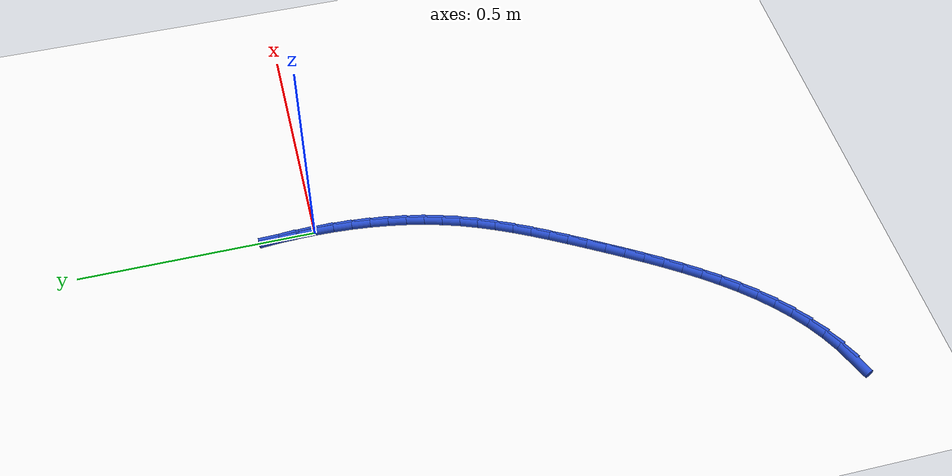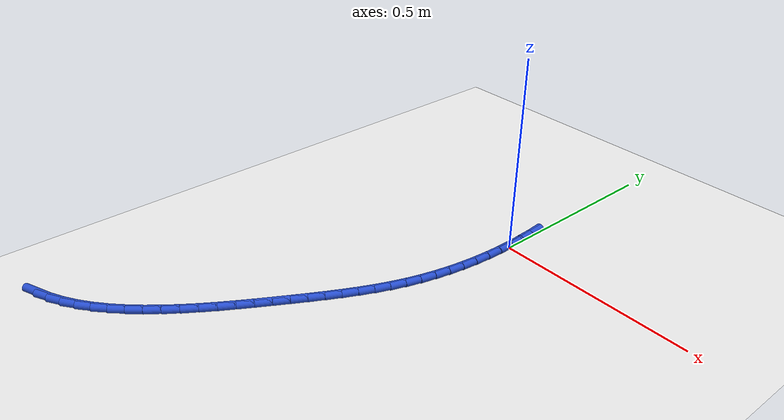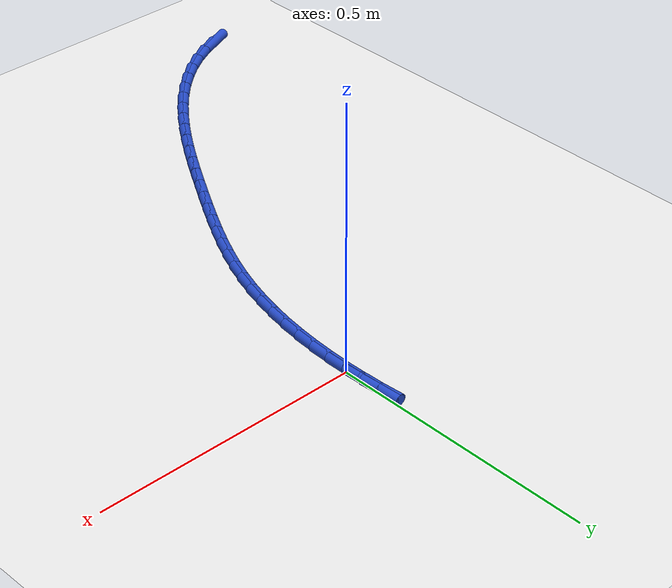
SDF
<sdf version="1.6">
 <world name="default">
  <model name="ground_plane">
   <static>1</static>
   <link name="link">
    <collision name="collision">
     <geometry><plane><normal>0 0 1</normal><size>100 100</size></plane></geometry>
     <surface><friction><ode><mu>100</mu><mu2>50</mu2></ode></friction></surface>
    </collision>
    <visual name="visual">
     <cast_shadows>0</cast_shadows>
     <geometry><plane><normal>0 0 1</normal><size>100 100</size></plane></geometry>
     <material>
      <script><uri>file://media/materials/scripts/gazebo.material</uri><name>Gazebo/WhiteGlow</name></script>
     </material>
    </visual>
   </link>
  </model>
  <model name="line">
   <link name="link_0">
    <pose>0.0 8.326672684688674e-17 0.01 0 1.57 -1.5583323516176184</pose>
    <collision name="collision">
     <geometry><cylinder><radius>0.01</radius><length>0.08</length></cylinder></geometry>
    </collision>
    <visual name="visual">
     <material>
      <script><name>Gazebo/Blue</name><uri>file://media/materials/scripts/gazebo.material</uri></script>
     </material>
     <geometry><cylinder><radius>0.01</radius><length>0.08</length></cylinder></geometry>
    </visual>
   </link>
   <link name="link_1">
    <pose>-0.00049817348563206 0.039966999378888604 0.01 0 1.57 -1.5231837299847661</pose>
    <collision name="collision">
     <geometry><cylinder><radius>0.01</radius><length>0.08</length></cylinder></geometry>
    </collision>
    <visual name="visual">
     <material>
      <script><name>Gazebo/Blue</name><uri>file://media/materials/scripts/gazebo.material</uri></script>
     </material>
     <geometry><cylinder><radius>0.01</radius><length>0.08</length></cylinder></geometry>
    </visual>
   </link>
   <link name="link_2">
    <pose>-0.0024028264487304237 0.0799398976470006 0.01 0 1.57 -1.4854096803634396</pose>
    <collision name="collision">
     <geometry><cylinder><radius>0.01</radius><length>0.08</length></cylinder></geometry>
    </collision>
    <visual name="visual">
     <material>
      <script><name>Gazebo/Blue</name><uri>file://media/materials/scripts/gazebo.material</uri></script>
     </material>
     <geometry><cylinder><radius>0.01</radius><length>0.08</length></cylinder></geometry>
    </visual>
   </link>
   <link name="link_180">
    <pose>-0.5565238218049252 -0.9795769766192313 0.01 0 1.57 0.3865329111864693</pose>
    <collision name="collision">
     <geometry><cylinder><radius>0.01</radius><length>0.08</length></cylinder></geometry>
    </collision>
    <visual name="visual">
     <material>
      <script><name>Gazebo/Blue</name><uri>file://media/materials/scripts/gazebo.material</uri></script>
     </material>
     <geometry><cylinder><radius>0.01</radius><length>0.08</length></cylinder></geometry>
    </visual>
   </link>
   <link name="link_181">
    <pose>-0.5215744329362249 -0.9653523042346761 0.01 0 1.57 0.4830212377849191</pose>
    <collision name="collision">
     <geometry><cylinder><radius>0.01</radius><length>0.08</length></cylinder></geometry>
    </collision>
    <visual name="visual">
     <material>
      <script><name>Gazebo/Blue</name><uri>file://media/materials/scripts/gazebo.material</uri></script>
     </material>
     <geometry><cylinder><radius>0.01</radius><length>0.08</length></cylinder></geometry>
    </visual>
   </link>
   <link name="link_182">
    <pose>-0.48830966295287115 -0.9479063625501031 0.01 0 1.57 0.5721788431687869</pose>
    <collision name="collision">
     <geometry><cylinder><radius>0.01</radius><length>0.08</length></cylinder></geometry>
    </collision>
    <visual name="visual">
     <material>
      <script><name>Gazebo/Blue</name><uri>file://media/materials/scripts/gazebo.material</uri></script>
     </material>
     <geometry><cylinder><radius>0.01</radius><length>0.08</length></cylinder></geometry>
    </visual>
   </link>
   <link name="link_183">
    <pose>-0.4566341458540283 -0.9275058453429049 0.01 0 1.57 0.6530207370626204</pose>
    <collision name="collision">
     <geometry><cylinder><radius>0.01</radius><length>0.08</length></cylinder></geometry>
    </collision>
    <visual name="visual">
     <material>
      <script><name>Gazebo/Blue</name><uri>file://media/materials/scripts/gazebo.material</uri></script>
     </material>
     <geometry><cylinder><radius>0.01</radius><length>0.08</length></cylinder></geometry>
    </visual>
   </link>
   <link name="link_184">
    <pose>-0.4264525156388624 -0.9044174463904768 0.01 0 1.57 0.7251770940195671</pose>
    <collision name="collision">
     <geometry><cylinder><radius>0.01</radius><length>0.08</length></cylinder></geometry>
    </collision>
    <visual name="visual">
     <material>
      <script><name>Gazebo/Blue</name><uri>file://media/materials/scripts/gazebo.material</uri></script>
     </material>
     <geometry><cylinder><radius>0.01</radius><length>0.08</length></cylinder></geometry>
    </visual>
   </link>
   <link name="link_185">
    <pose>-0.39766940630653763 -0.8789078594702125 0.01 0 1.57 0.7887371641478029</pose>
    <collision name="collision">
     <geometry><cylinder><radius>0.01</radius><length>0.08</length></cylinder></geometry>
    </collision>
    <visual name="visual">
     <material>
      <script><name>Gazebo/Blue</name><uri>file://media/materials/scripts/gazebo.material</uri></script>
     </material>
     <geometry><cylinder><radius>0.01</radius><length>0.08</length></cylinder></geometry>
    </visual>
   </link>
   <link name="link_186">
    <pose>-0.3701894518562189 -0.8512437783595059 0.01 0 1.57 0.8440816594356215</pose>
    <collision name="collision">
     <geometry><cylinder><radius>0.01</radius><length>0.08</length></cylinder></geometry>
    </collision>
    <visual name="visual">
     <material>
      <script><name>Gazebo/Blue</name><uri>file://media/materials/scripts/gazebo.material</uri></script>
     </material>
     <geometry><cylinder><radius>0.01</radius><length>0.08</length></cylinder></geometry>
    </visual>
   </link>
   <link name="link_187">
    <pose>-0.3439172862870711 -0.8216918968357515 0.01 0 1.57 0.891740620202016</pose>
    <collision name="collision">
     <geometry><cylinder><radius>0.01</radius><length>0.08</length></cylinder></geometry>
    </collision>
    <visual name="visual">
     <material>
      <script><name>Gazebo/Blue</name><uri>file://media/materials/scripts/gazebo.material</uri></script>
     </material>
     <geometry><cylinder><radius>0.01</radius><length>0.08</length></cylinder></geometry>
    </visual>
   </link>
   <link name="link_188">
    <pose>-0.3187575435982588 -0.7905189086763429 0.01 0 1.57 0.9322891109892542</pose>
    <collision name="collision">
     <geometry><cylinder><radius>0.01</radius><length>0.08</length></cylinder></geometry>
    </collision>
    <visual name="visual">
     <material>
      <script><name>Gazebo/Blue</name><uri>file://media/materials/scripts/gazebo.material</uri></script>
     </material>
     <geometry><cylinder><radius>0.01</radius><length>0.08</length></cylinder></geometry>
    </visual>
   </link>
   <link name="link_189">
    <pose>-0.2946148577889467 -0.7579915076586735 0.01 0 1.57 0.9662782288626665</pose>
    <collision name="collision">
     <geometry><cylinder><radius>0.01</radius><length>0.08</length></cylinder></geometry>
    </collision>
    <visual name="visual">
     <material>
      <script><name>Gazebo/Blue</name><uri>file://media/materials/scripts/gazebo.material</uri></script>
     </material>
     <geometry><cylinder><radius>0.01</radius><length>0.08</length></cylinder></geometry>
    </visual>
   </link>
   <link name="link_190">
    <pose>-0.2713938628583004 -0.7243763875601389 0.01 0 1.57 0.9941929998599791</pose>
    <collision name="collision">
     <geometry><cylinder><radius>0.01</radius><length>0.08</length></cylinder></geometry>
    </collision>
    <visual name="visual">
     <material>
      <script><name>Gazebo/Blue</name><uri>file://media/materials/scripts/gazebo.material</uri></script>
     </material>
     <geometry><cylinder><radius>0.01</radius><length>0.08</length></cylinder></geometry>
    </visual>
   </link>
   <link name="link_191">
    <pose>-0.24899919280548435 -0.6899402421581325 0.01 0 1.57 1.0164280937667067</pose>
    <collision name="collision">
     <geometry><cylinder><radius>0.01</radius><length>0.08</length></cylinder></geometry>
    </collision>
    <visual name="visual">
     <material>
      <script><name>Gazebo/Blue</name><uri>file://media/materials/scripts/gazebo.material</uri></script>
     </material>
     <geometry><cylinder><radius>0.01</radius><length>0.08</length></cylinder></geometry>
    </visual>
   </link>
   <link name="link_192">
    <pose>-0.22733548162966338 -0.654949765230048 0.01 0 1.57 1.0332737919654174</pose>
    <collision name="collision">
     <geometry><cylinder><radius>0.01</radius><length>0.08</length></cylinder></geometry>
    </collision>
    <visual name="visual">
     <material>
      <script><name>Gazebo/Blue</name><uri>file://media/materials/scripts/gazebo.material</uri></script>
     </material>
     <geometry><cylinder><radius>0.01</radius><length>0.08</length></cylinder></geometry>
    </visual>
   </link>
   <link name="link_193">
    <pose>-0.20630736333000227 -0.6196716505532798 0.01 0 1.57 1.0449065394936343</pose>
    <collision name="collision">
     <geometry><cylinder><radius>0.01</radius><length>0.08</length></cylinder></geometry>
    </collision>
    <visual name="visual">
     <material>
      <script><name>Gazebo/Blue</name><uri>file://media/materials/scripts/gazebo.material</uri></script>
     </material>
     <geometry><cylinder><radius>0.01</radius><length>0.08</length></cylinder></geometry>
    </visual>
   </link>
   <link name="link_194">
    <pose>-0.18581947190566597 -0.584372591905222 0.01 0 1.57 1.0514959011865521</pose>
    <collision name="collision">
     <geometry><cylinder><radius>0.01</radius><length>0.08</length></cylinder></geometry>
    </collision>
    <visual name="visual">
     <material>
      <script><name>Gazebo/Blue</name><uri>file://media/materials/scripts/gazebo.material</uri></script>
     </material>
     <geometry><cylinder><radius>0.01</radius><length>0.08</length></cylinder></geometry>
    </visual>
   </link>
   <link name="link_195">
    <pose>-0.16577932188499045 -0.5493148889452809 0.01 0 1.57 1.0575085285339294</pose>
    <collision name="collision">
     <geometry><cylinder><radius>0.01</radius><length>0.08</length></cylinder></geometry>
    </collision>
    <visual name="visual">
     <material>
      <script><name>Gazebo/Blue</name><uri>file://media/materials/scripts/gazebo.material</uri></script>
     </material>
     <geometry><cylinder><radius>0.01</radius><length>0.08</length></cylinder></geometry>
    </visual>
   </link>
   <link name="link_196">
    <pose>-0.14620591860633594 -0.5145907671053007 0.01 0 1.57 1.0688932135027</pose>
    <collision name="collision">
     <geometry><cylinder><radius>0.01</radius><length>0.08</length></cylinder></geometry>
    </collision>
    <visual name="visual">
     <material>
      <script><name>Gazebo/Blue</name><uri>file://media/materials/scripts/gazebo.material</uri></script>
     </material>
     <geometry><cylinder><radius>0.01</radius><length>0.08</length></cylinder></geometry>
    </visual>
   </link>
   <link name="link_197">
    <pose>-0.12726281521425406 -0.48007195062534247 0.01 0 1.57 1.0862132047849662</pose>
    <collision name="collision">
     <geometry><cylinder><radius>0.01</radius><length>0.08</length></cylinder></geometry>
    </collision>
    <visual name="visual">
     <material>
      <script><name>Gazebo/Blue</name><uri>file://media/materials/scripts/gazebo.material</uri></script>
     </material>
     <geometry><cylinder><radius>0.01</radius><length>0.08</length></cylinder></geometry>
    </visual>
   </link>
   <link name="link_198">
    <pose>-0.10912319684178573 -0.4456154705792558 0.01 0 1.57 1.1095979594414858</pose>
    <collision name="collision">
     <geometry><cylinder><radius>0.01</radius><length>0.08</length></cylinder></geometry>
    </collision>
    <visual name="visual">
     <material>
      <script><name>Gazebo/Blue</name><uri>file://media/materials/scripts/gazebo.material</uri></script>
     </material>
     <geometry><cylinder><radius>0.01</radius><length>0.08</length></cylinder></geometry>
    </visual>
   </link>
   <link name="link_199">
    <pose>-0.09196024862197259 -0.4110783580408912 0.01 0 1.57 1.1391077093596067</pose>
    <collision name="collision">
     <geometry><cylinder><radius>0.01</radius><length>0.08</length></cylinder></geometry>
    </collision>
    <visual name="visual">
     <material>
      <script><name>Gazebo/Blue</name><uri>file://media/materials/scripts/gazebo.material</uri></script>
     </material>
     <geometry><cylinder><radius>0.01</radius><length>0.08</length></cylinder></geometry>
    </visual>
   </link>
   <link name="link_200">
    <pose>-0.07594715568785612 -0.376317644084099 0.01 0 1.57 1.1747037174572315</pose>
    <collision name="collision">
     <geometry><cylinder><radius>0.01</radius><length>0.08</length></cylinder></geometry>
    </collision>
    <visual name="visual">
     <material>
      <script><name>Gazebo/Blue</name><uri>file://media/materials/scripts/gazebo.material</uri></script>
     </material>
     <geometry><cylinder><radius>0.01</radius><length>0.08</length></cylinder></geometry>
    </visual>
   </link>
   <link name="link_201">
    <pose>-0.0612571031724779 -0.3411903597827298 0.01 0 1.57 1.2162139758488328</pose>
    <collision name="collision">
     <geometry><cylinder><radius>0.01</radius><length>0.08</length></cylinder></geometry>
    </collision>
    <visual name="visual">
     <material>
      <script><name>Gazebo/Blue</name><uri>file://media/materials/scripts/gazebo.material</uri></script>
     </material>
     <geometry><cylinder><radius>0.01</radius><length>0.08</length></cylinder></geometry>
    </visual>
   </link>
   <link name="link_202">
    <pose>-0.04806327620887917 -0.3055535362106333 0.01 0 1.57 1.2628856784433913</pose>
    <collision name="collision">
     <geometry><cylinder><radius>0.01</radius><length>0.08</length></cylinder></geometry>
    </collision>
    <visual name="visual">
     <material>
      <script><name>Gazebo/Blue</name><uri>file://media/materials/scripts/gazebo.material</uri></script>
     </material>
     <geometry><cylinder><radius>0.01</radius><length>0.08</length></cylinder></geometry>
    </visual>
   </link>
   <link name="link_203">
    <pose>-0.03652594946448262 -0.26927552112460934 0.01 0 1.57 1.3100790123329351</pose>
    <collision name="collision">
     <geometry><cylinder><radius>0.01</radius><length>0.08</length></cylinder></geometry>
    </collision>
    <visual name="visual">
     <material>
      <script><name>Gazebo/Blue</name><uri>file://media/materials/scripts/gazebo.material</uri></script>
     </material>
     <geometry><cylinder><radius>0.01</radius><length>0.08</length></cylinder></geometry>
    </visual>
   </link>
   <link name="link_204">
    <pose>-0.026672287881313598 -0.23234133975878182 0.01 0 1.57 1.3551803731616243</pose>
    <collision name="collision">
     <geometry><cylinder><radius>0.01</radius><length>0.08</length></cylinder></geometry>
    </collision>
    <visual name="visual">
     <material>
      <script><name>Gazebo/Blue</name><uri>file://media/materials/scripts/gazebo.material</uri></script>
     </material>
     <geometry><cylinder><radius>0.01</radius><length>0.08</length></cylinder></geometry>
    </visual>
   </link>
   <link name="link_205">
    <pose>-0.018451007435145952 -0.19480478187559133 0.01 0 1.57 1.3981507400793753</pose>
    <collision name="collision">
     <geometry><cylinder><radius>0.01</radius><length>0.08</length></cylinder></geometry>
    </collision>
    <visual name="visual">
     <material>
      <script><name>Gazebo/Blue</name><uri>file://media/materials/scripts/gazebo.material</uri></script>
     </material>
     <geometry><cylinder><radius>0.01</radius><length>0.08</length></cylinder></geometry>
    </visual>
   </link>
   <link name="link_206">
    <pose>-0.01180981320428458 -0.1567205233407752 0.01 0 1.57 1.4390149307386972</pose>
    <collision name="collision">
     <geometry><cylinder><radius>0.01</radius><length>0.08</length></cylinder></geometry>
    </collision>
    <visual name="visual">
     <material>
      <script><name>Gazebo/Blue</name><uri>file://media/materials/scripts/gazebo.material</uri></script>
     </material>
     <geometry><cylinder><radius>0.01</radius><length>0.08</length></cylinder></geometry>
    </visual>
   </link>
   <link name="link_207">
    <pose>-0.00669641026703439 -0.11814324002007066 0.01 0 1.57 1.4778228643248463</pose>
    <collision name="collision">
     <geometry><cylinder><radius>0.01</radius><length>0.08</length></cylinder></geometry>
    </collision>
    <visual name="visual">
     <material>
      <script><name>Gazebo/Blue</name><uri>file://media/materials/scripts/gazebo.material</uri></script>
     </material>
     <geometry><cylinder><radius>0.01</radius><length>0.08</length></cylinder></geometry>
    </visual>
   </link>
   <link name="link_208">
    <pose>-0.003058503701700295 -0.07912760777921507 0.01 0 1.57 1.514643639273532</pose>
    <collision name="collision">
     <geometry><cylinder><radius>0.01</radius><length>0.08</length></cylinder></geometry>
    </collision>
    <visual name="visual">
     <material>
      <script><name>Gazebo/Blue</name><uri>file://media/materials/scripts/gazebo.material</uri></script>
     </material>
     <geometry><cylinder><radius>0.01</radius><length>0.08</length></cylinder></geometry>
    </visual>
   </link>
   <link name="link_209">
    <pose>-0.000843798586587164 -0.03972830248394486 0.01 0 1.57 1.5495602888168676</pose>
    <collision name="collision">
     <geometry><cylinder><radius>0.01</radius><length>0.08</length></cylinder></geometry>
    </collision>
    <visual name="visual">
     <material>
      <script><name>Gazebo/Blue</name><uri>file://media/materials/scripts/gazebo.material</uri></script>
     </material>
     <geometry><cylinder><radius>0.01</radius><length>0.08</length></cylinder></geometry>
    </visual>
   </link>
   <link name="link_210">
    <pose>-1.1275702593849246e-17 -9.020562075079397e-17 0.01 0 1.57 -1.5589273372448973</pose>
    <collision name="collision">
     <geometry><cylinder><radius>0.01</radius><length>0.08</length></cylinder></geometry>
    </collision>
    <visual name="visual">
     <material>
      <script><name>Gazebo/Blue</name><uri>file://media/materials/scripts/gazebo.material</uri></script>
     </material>
     <geometry><cylinder><radius>0.01</radius><length>0.08</length></cylinder></geometry>
    </visual>
   </link>
   <link name="link_211">
    <pose>-0.0004748130202436359 0.04000262380688466 0.01 0 1.57 -1.5275356298240894</pose>
    <collision name="collision">
     <geometry><cylinder><radius>0.01</radius><length>0.08</length></cylinder></geometry>
    </collision>
    <visual name="visual">
     <material>
      <script><name>Gazebo/Blue</name><uri>file://media/materials/scripts/gazebo.material</uri></script>
     </material>
     <geometry><cylinder><radius>0.01</radius><length>0.08</length></cylinder></geometry>
    </visual>
   </link>
   <link name="link_212">
    <pose>-0.002215942725623093 0.08022489307097301 0.01 0 1.57 -1.543181713125758</pose>
    <collision name="collision">
     <geometry><cylinder><radius>0.01</radius><length>0.08</length></cylinder></geometry>
    </collision>
    <visual name="visual">
     <material>
      <script><name>Gazebo/Blue</name><uri>file://media/materials/scripts/gazebo.material</uri></script>
     </material>
     <geometry><cylinder><radius>0.01</radius><length>0.08</length></cylinder></geometry>
    </visual>
   </link>
  </model>
 </world>
</sdf>
